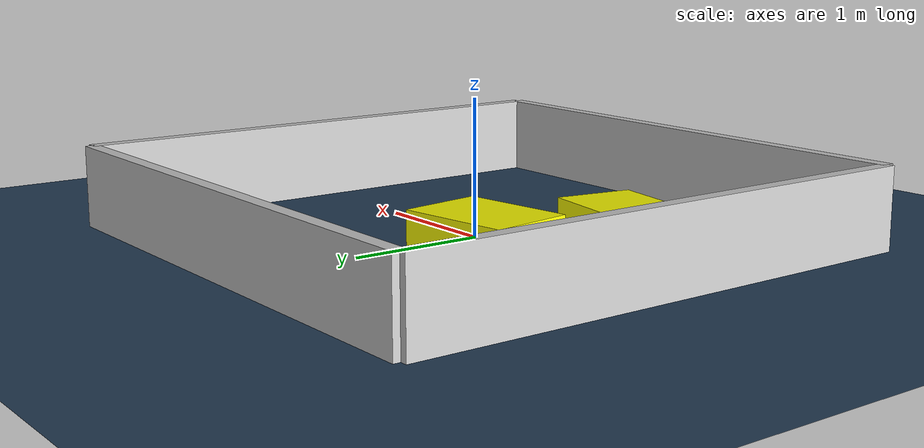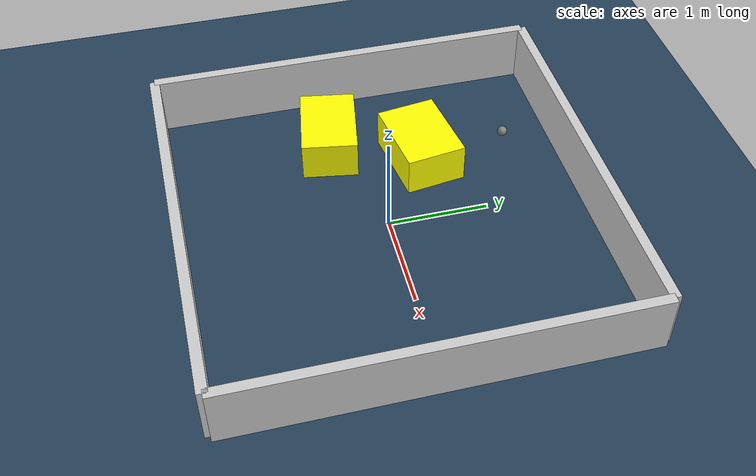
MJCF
<?xml version="1.0" ?>
<mujoco model="generated_environment">
  <option timestep="0.01" integrator="RK4" cone="elliptic"/>
  <default>
    <geom density="1"/>
  </default>
  <asset>
    <texture builtin="gradient" height="3072" rgb1="0.3 0.5 0.7" rgb2="0 0 0" type="skybox" width="512"/>
    <texture builtin="checker" height="300" mark="edge" markrgb="0.8 0.8 0.8" name="groundplane" rgb1="0.2 0.3 0.4" rgb2="0.1 0.2 0.3" type="2d" width="300"/>
    <material name="groundplane" reflectance="0.2" texrepeat="5 5" texture="groundplane" texuniform="true"/>
    <material name="robot" rgba="0.0 1.0 0.0 1"/>
  </asset>
  <worldbody>
    <light dir="0 0 -1" directional="true" pos="0 0 1.5"/>
    <geom condim="4" friction="1.0 0.005 0.001" material="groundplane" name="floor" size="0 0 0.05" type="plane"/>
    <body name="walls">
      <geom name="wall_1" condim="4" pos="-2.0 0.0 0.3" rgba="0.800000011920929 0.800000011920929 0.800000011920929 1.0" size="0.05 2.0 0.3" type="box"/>
      <geom name="wall_2" condim="4" pos="2.0 0.0 0.3" rgba="0.800000011920929 0.800000011920929 0.800000011920929 1.0" size="0.05 2.0 0.3" type="box"/>
      <geom name="wall_3" condim="4" pos="0.0 -2.0 0.3" rgba="0.800000011920929 0.800000011920929 0.800000011920929 1.0" size="2.0 0.05 0.3" type="box"/>
      <geom name="wall_4" condim="4" pos="0.0 2.0 0.3" rgba="0.800000011920929 0.800000011920929 0.800000011920929 1.0" size="2.0 0.05 0.3" type="box"/>
    </body>
    <body name="robot">
      <joint name="joint_x" type="slide" pos="0 0 0" axis="1 0 0"/>
      <joint name="joint_y" type="slide" pos="0 0 0" axis="0 1 0"/>
      <geom name="robot" type="sphere" pos="-0.8302426387635741 1.4251634209393398 0.2" size="0.05" mass="5." friction="1.0 0.005 0.0001" condim="4"/>
      <site name="sensor_ball"/>
    </body>
    <body name="obstacle_1_movable">
      <geom name="obstacle_1_movable" condim="4" pos="-0.8216463811252083 0.5420547368895114 0.2" euler="0 0 188.11684476778737" friction="1.0 0.005 0.001" rgba="1 1 0 1" size="0.41442267717047565 0.30431857194008594 0.2" type="box" mass="0.1"/>
      <joint type="free"/>
    </body>
    <body name="obstacle_2_movable">
      <geom name="obstacle_2_movable" condim="4" pos="-1.202643210203575 -0.3375042003248099 0.2" euler="0 0 350.3192970692101" friction="1.0 0.005 0.001" rgba="1 1 0 1" size="0.409163616417588 0.28095460259377847 0.2" type="box" mass="0.1"/>
      <joint type="free"/>
    </body>
  </worldbody>
  <actuator>
    <motor name="actuator_x" joint="joint_x" gear="1" ctrlrange="-1 1"/>
    <motor name="actuator_y" joint="joint_y" gear="1" ctrlrange="-1 1"/>
  </actuator>
</mujoco>
